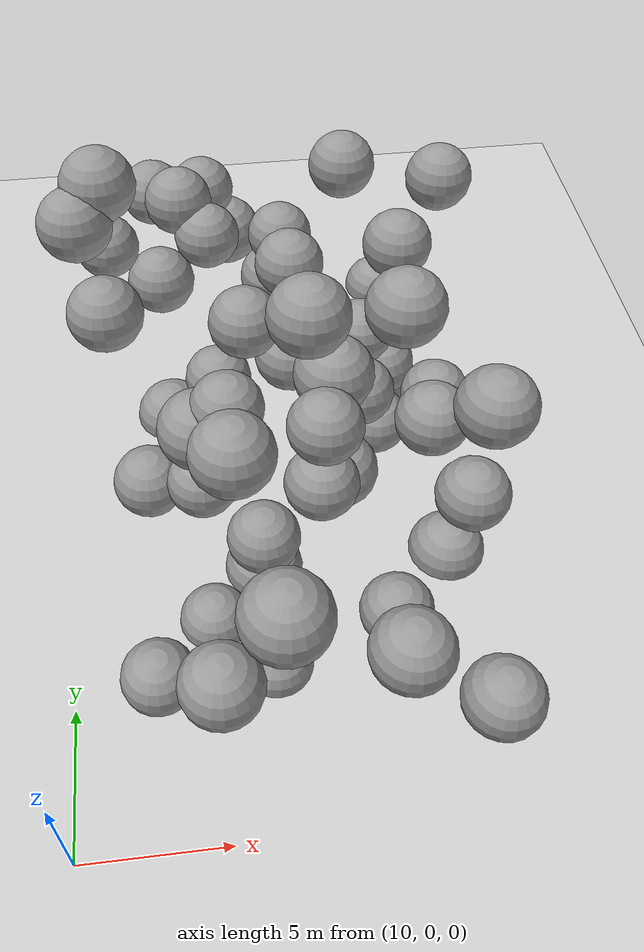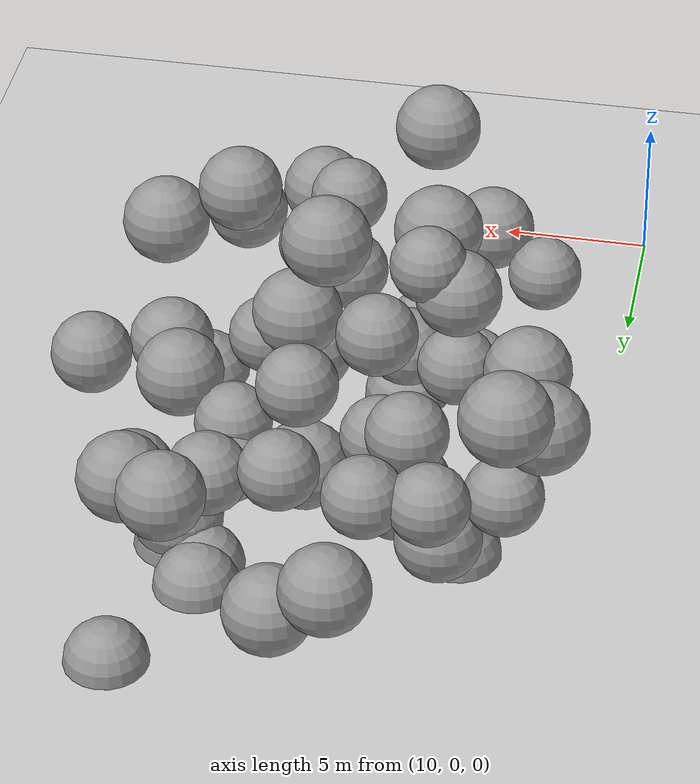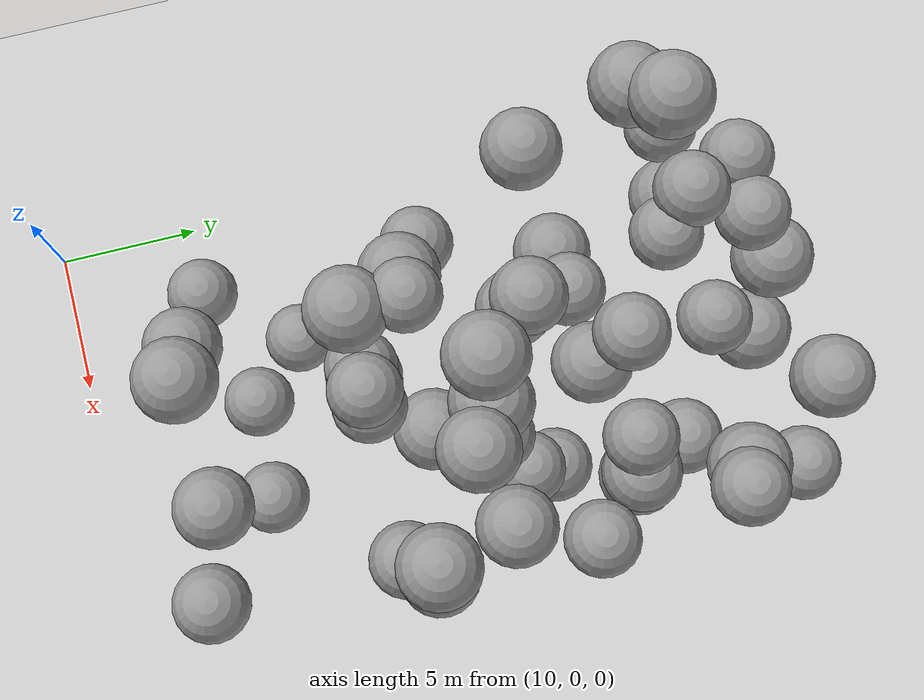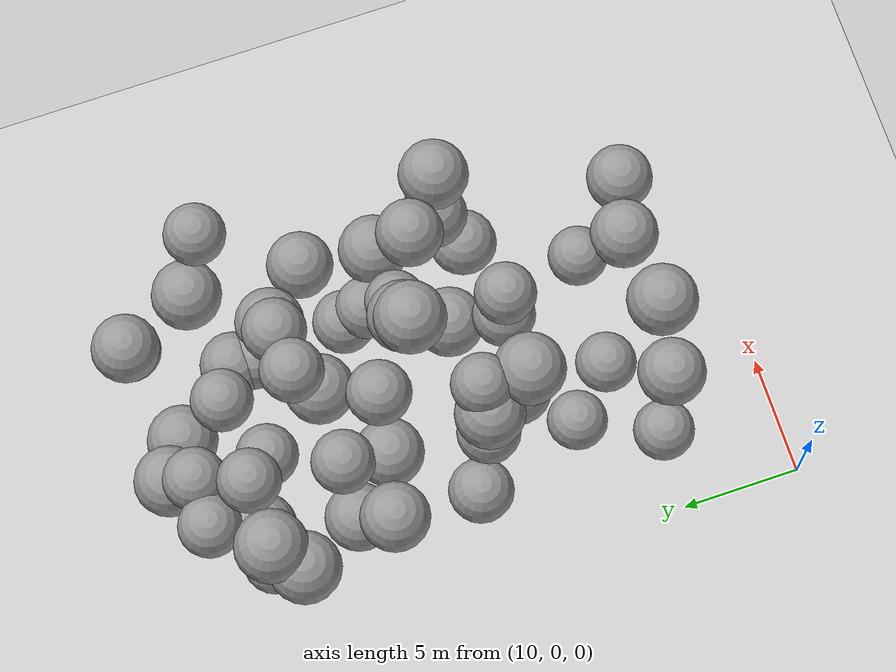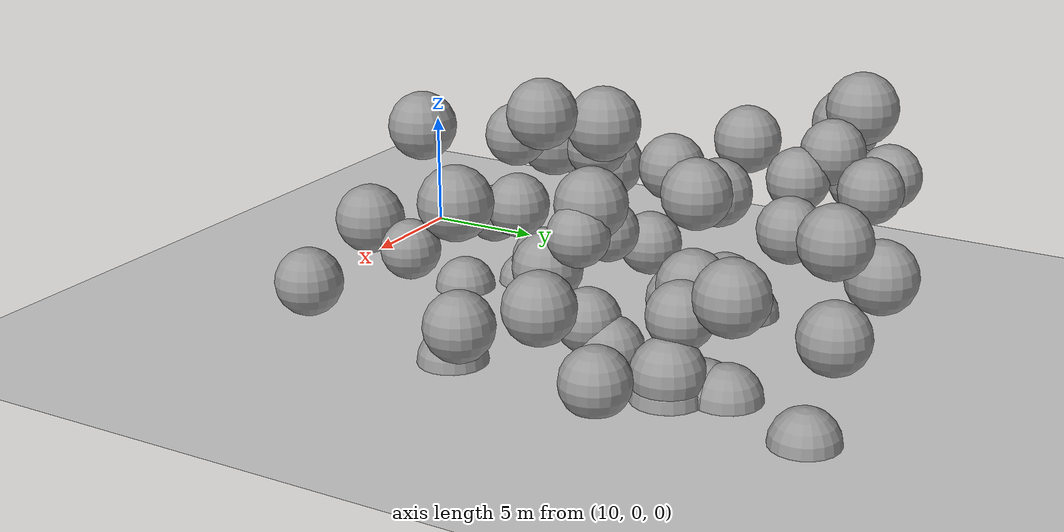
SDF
<sdf version="1.7">
 <world name="default">
  <model name="ground_plane">
   <static>1</static>
   <link name="link">
    <collision name="collision">
     <geometry><plane><normal>0 0 1</normal><size>100 100</size></plane></geometry>
     <surface>
      <contact><collide_bitmask>65535</collide_bitmask></contact>
      <friction><ode><mu>100</mu><mu2>50</mu2></ode></friction>
     </surface>
    </collision>
    <visual name="visual">
     <cast_shadows>0</cast_shadows>
     <geometry><plane><normal>0 0 1</normal><size>100 100</size></plane></geometry>
     <material>
      <script><uri>file://media/materials/scripts/gazebo.material</uri><name>Gazebo/Grey</name></script>
     </material>
    </visual>
   </link>
  </model>
  <model name="sphere_0">
   <static>1</static>
   <pose>15 12 6 0 0 0</pose>
   <link name="link">
    <inertial>
     <mass>1278.988058648705</mass>
     <inertia>
      <ixx>1076.7422005173073</ixx>
      <iyy>1076.7422005173073</iyy>
      <izz>1076.7422005173073</izz>
      <ixy>0</ixy>
      <ixz>0</ixz>
      <iyz>0</iyz>
     </inertia>
    </inertial>
    <collision name="collision">
     <geometry><sphere><radius>1.4507501588597562</radius></sphere></geometry>
    </collision>
    <visual name="visual">
     <geometry><sphere><radius>1.4507501588597562</radius></sphere></geometry>
     <material>
      <script><uri>file://media/materials/scripts/gazebo.material</uri><name>Gazebo/Grey</name></script>
     </material>
    </visual>
   </link>
  </model>
  <model name="sphere_14">
   <static>1</static>
   <pose>17 25 4 0 0 0</pose>
   <link name="link">
    <inertial>
     <mass>1322.0387221128017</mass>
     <inertia>
      <ixx>1137.822570965103</ixx>
      <iyy>1137.822570965103</iyy>
      <izz>1137.822570965103</izz>
      <ixy>0</ixy>
      <ixz>0</ixz>
      <iyz>0</iyz>
     </inertia>
    </inertial>
    <collision name="collision">
     <geometry><sphere><radius>1.4668482558747977</radius></sphere></geometry>
    </collision>
    <visual name="visual">
     <geometry><sphere><radius>1.4668482558747977</radius></sphere></geometry>
     <material>
      <script><uri>file://media/materials/scripts/gazebo.material</uri><name>Gazebo/Grey</name></script>
     </material>
    </visual>
   </link>
  </model>
  <model name="sphere_21">
   <static>1</static>
   <pose>19 22 6 0 0 0</pose>
   <link name="link">
    <inertial>
     <mass>886.9974340022904</mass>
     <inertia>
      <ixx>585.0659958478017</ixx>
      <iyy>585.0659958478017</iyy>
      <izz>585.0659958478017</izz>
      <ixy>0</ixy>
      <ixz>0</ixz>
      <iyz>0</iyz>
     </inertia>
    </inertial>
    <collision name="collision">
     <geometry><sphere><radius>1.2841366802223042</radius></sphere></geometry>
    </collision>
    <visual name="visual">
     <geometry><sphere><radius>1.2841366802223042</radius></sphere></geometry>
     <material>
      <script><uri>file://media/materials/scripts/gazebo.material</uri><name>Gazebo/Grey</name></script>
     </material>
    </visual>
   </link>
  </model>
  <model name="sphere_42">
   <static>1</static>
   <pose>19 10 8 0 0 0</pose>
   <link name="link">
    <inertial>
     <mass>841.4589982597224</mass>
     <inertia>
      <ixx>535.8655651688931</ixx>
      <iyy>535.8655651688931</iyy>
      <izz>535.8655651688931</izz>
      <ixy>0</ixy>
      <ixz>0</ixz>
      <iyz>0</iyz>
     </inertia>
    </inertial>
    <collision name="collision">
     <geometry><sphere><radius>1.2617736390456205</radius></sphere></geometry>
    </collision>
    <visual name="visual">
     <geometry><sphere><radius>1.2617736390456205</radius></sphere></geometry>
     <material>
      <script><uri>file://media/materials/scripts/gazebo.material</uri><name>Gazebo/Grey</name></script>
     </material>
    </visual>
   </link>
  </model>
  <model name="sphere_47">
   <static>1</static>
   <pose>24 14 3 0 0 0</pose>
   <link name="link">
    <inertial>
     <mass>1346.3461283506601</mass>
     <inertia>
      <ixx>1172.9030837464702</ixx>
      <iyy>1172.9030837464702</iyy>
      <izz>1172.9030837464702</izz>
      <ixy>0</ixy>
      <ixz>0</ixz>
      <iyz>0</iyz>
     </inertia>
    </inertial>
    <collision name="collision">
     <geometry><sphere><radius>1.475783687205652</radius></sphere></geometry>
    </collision>
    <visual name="visual">
     <geometry><sphere><radius>1.475783687205652</radius></sphere></geometry>
     <material>
      <script><uri>file://media/materials/scripts/gazebo.material</uri><name>Gazebo/Grey</name></script>
     </material>
    </visual>
   </link>
  </model>
  <model name="sphere_70">
   <static>1</static>
   <pose>22 15 2 0 0 0</pose>
   <link name="link">
    <inertial>
     <mass>957.7468671745436</mass>
     <inertia>
      <ixx>664.8935988876275</ixx>
      <iyy>664.8935988876275</iyy>
      <izz>664.8935988876275</izz>
      <ixy>0</ixy>
      <ixz>0</ixz>
      <iyz>0</iyz>
     </inertia>
    </inertial>
    <collision name="collision">
     <geometry><sphere><radius>1.3174092554641759</radius></sphere></geometry>
    </collision>
    <visual name="visual">
     <geometry><sphere><radius>1.3174092554641759</radius></sphere></geometry>
     <material>
      <script><uri>file://media/materials/scripts/gazebo.material</uri><name>Gazebo/Grey</name></script>
     </material>
    </visual>
   </link>
  </model>
  <model name="sphere_74">
   <static>1</static>
   <pose>22 16 1 0 0 0</pose>
   <link name="link">
    <inertial>
     <mass>1035.8773521349256</mass>
     <inertia>
      <ixx>757.7305809326065</ixx>
      <iyy>757.7305809326065</iyy>
      <izz>757.7305809326065</izz>
      <ixy>0</ixy>
      <ixz>0</ixz>
      <iyz>0</iyz>
     </inertia>
    </inertial>
    <collision name="collision">
     <geometry><sphere><radius>1.3523006067592522</radius></sphere></geometry>
    </collision>
    <visual name="visual">
     <geometry><sphere><radius>1.3523006067592522</radius></sphere></geometry>
     <material>
      <script><uri>file://media/materials/scripts/gazebo.material</uri><name>Gazebo/Grey</name></script>
     </material>
    </visual>
   </link>
  </model>
  <model name="sphere_76">
   <static>1</static>
   <pose>14 18 0 0 0 0</pose>
   <link name="link">
    <inertial>
     <mass>1339.566241561617</mass>
     <inertia>
      <ixx>1163.075504147498</ixx>
      <iyy>1163.075504147498</iyy>
      <izz>1163.075504147498</izz>
      <ixy>0</ixy>
      <ixz>0</ixz>
      <iyz>0</iyz>
     </inertia>
    </inertial>
    <collision name="collision">
     <geometry><sphere><radius>1.473302282503326</radius></sphere></geometry>
    </collision>
    <visual name="visual">
     <geometry><sphere><radius>1.473302282503326</radius></sphere></geometry>
     <material>
      <script><uri>file://media/materials/scripts/gazebo.material</uri><name>Gazebo/Grey</name></script>
     </material>
    </visual>
   </link>
  </model>
  <model name="sphere_81">
   <static>1</static>
   <pose>16 24 7 0 0 0</pose>
   <link name="link">
    <inertial>
     <mass>898.9616220781512</mass>
     <inertia>
      <ixx>598.2777306058921</ixx>
      <iyy>598.2777306058921</iyy>
      <izz>598.2777306058921</izz>
      <ixy>0</ixy>
      <ixz>0</ixz>
      <iyz>0</iyz>
     </inertia>
    </inertial>
    <collision name="collision">
     <geometry><sphere><radius>1.2898845693350613</radius></sphere></geometry>
    </collision>
    <visual name="visual">
     <geometry><sphere><radius>1.2898845693350613</radius></sphere></geometry>
     <material>
      <script><uri>file://media/materials/scripts/gazebo.material</uri><name>Gazebo/Grey</name></script>
     </material>
    </visual>
   </link>
  </model>
  <model name="sphere_84">
   <static>1</static>
   <pose>24 25 0 0 0 0</pose>
   <link name="link">
    <inertial>
     <mass>1113.5386543117133</mass>
     <inertia>
      <ixx>854.7578158525877</ixx>
      <iyy>854.7578158525877</iyy>
      <izz>854.7578158525877</izz>
      <ixy>0</ixy>
      <ixz>0</ixz>
      <iyz>0</iyz>
     </inertia>
    </inertial>
    <collision name="collision">
     <geometry><sphere><radius>1.3852842483075376</radius></sphere></geometry>
    </collision>
    <visual name="visual">
     <geometry><sphere><radius>1.3852842483075376</radius></sphere></geometry>
     <material>
      <script><uri>file://media/materials/scripts/gazebo.material</uri><name>Gazebo/Grey</name></script>
     </material>
    </visual>
   </link>
  </model>
  <model name="sphere_91">
   <static>1</static>
   <pose>22 21 0 0 0 0</pose>
   <link name="link">
    <inertial>
     <mass>1194.8294081815104</mass>
     <inertia>
      <ixx>961.2671267169985</ixx>
      <iyy>961.2671267169985</iyy>
      <izz>961.2671267169985</izz>
      <ixy>0</ixy>
      <ixz>0</ixz>
      <iyz>0</iyz>
     </inertia>
    </inertial>
    <collision name="collision">
     <geometry><sphere><radius>1.4182052802344938</radius></sphere></geometry>
    </collision>
    <visual name="visual">
     <geometry><sphere><radius>1.4182052802344938</radius></sphere></geometry>
     <material>
      <script><uri>file://media/materials/scripts/gazebo.material</uri><name>Gazebo/Grey</name></script>
     </material>
    </visual>
   </link>
  </model>
  <model name="sphere_106">
   <static>1</static>
   <pose>19 10 5 0 0 0</pose>
   <link name="link">
    <inertial>
     <mass>934.2651275107951</mass>
     <inertia>
      <ixx>637.9468286711718</ixx>
      <iyy>637.9468286711718</iyy>
      <izz>637.9468286711718</izz>
      <ixy>0</ixy>
      <ixz>0</ixz>
      <iyz>0</iyz>
     </inertia>
    </inertial>
    <collision name="collision">
     <geometry><sphere><radius>1.3065534361387776</radius></sphere></geometry>
    </collision>
    <visual name="visual">
     <geometry><sphere><radius>1.3065534361387776</radius></sphere></geometry>
     <material>
      <script><uri>file://media/materials/scripts/gazebo.material</uri><name>Gazebo/Grey</name></script>
     </material>
    </visual>
   </link>
  </model>
  <model name="sphere_108">
   <static>1</static>
   <pose>19 24 2 0 0 0</pose>
   <link name="link">
    <inertial>
     <mass>1372.9704820817115</mass>
     <inertia>
      <ixx>1211.8148000908611</ixx>
      <iyy>1211.8148000908611</iyy>
      <izz>1211.8148000908611</izz>
      <ixy>0</ixy>
      <ixz>0</ixz>
      <iyz>0</iyz>
     </inertia>
    </inertial>
    <collision name="collision">
     <geometry><sphere><radius>1.4854482632325592</radius></sphere></geometry>
    </collision>
    <visual name="visual">
     <geometry><sphere><radius>1.4854482632325592</radius></sphere></geometry>
     <material>
      <script><uri>file://media/materials/scripts/gazebo.material</uri><name>Gazebo/Grey</name></script>
     </material>
    </visual>
   </link>
  </model>
  <model name="sphere_113">
   <static>1</static>
   <pose>15 22 8 0 0 0</pose>
   <link name="link">
    <inertial>
     <mass>908.8805585958514</mass>
     <inertia>
      <ixx>609.3202450057744</ixx>
      <iyy>609.3202450057744</iyy>
      <izz>609.3202450057744</izz>
      <ixy>0</ixy>
      <ixz>0</ixz>
      <iyz>0</iyz>
     </inertia>
    </inertial>
    <collision name="collision">
     <geometry><sphere><radius>1.2946113239944343</radius></sphere></geometry>
    </collision>
    <visual name="visual">
     <geometry><sphere><radius>1.2946113239944343</radius></sphere></geometry>
     <material>
      <script><uri>file://media/materials/scripts/gazebo.material</uri><name>Gazebo/Grey</name></script>
     </material>
    </visual>
   </link>
  </model>
  <model name="sphere_122">
   <static>1</static>
   <pose>16 16 1 0 0 0</pose>
   <link name="link">
    <inertial>
     <mass>1327.2027267970655</mass>
     <inertia>
      <ixx>1145.2396105730131</ixx>
      <iyy>1145.2396105730131</iyy>
      <izz>1145.2396105730131</izz>
      <ixy>0</ixy>
      <ixz>0</ixz>
      <iyz>0</iyz>
     </inertia>
    </inertial>
    <collision name="collision">
     <geometry><sphere><radius>1.4687556558746524</radius></sphere></geometry>
    </collision>
    <visual name="visual">
     <geometry><sphere><radius>1.4687556558746524</radius></sphere></geometry>
     <material>
      <script><uri>file://media/materials/scripts/gazebo.material</uri><name>Gazebo/Grey</name></script>
     </material>
    </visual>
   </link>
  </model>
  <model name="sphere_129">
   <static>1</static>
   <pose>13 13 2 0 0 0</pose>
   <link name="link">
    <inertial>
     <mass>1074.1829190637104</mass>
     <inertia>
      <ixx>805.0039082538655</ixx>
      <iyy>805.0039082538655</iyy>
      <izz>805.0039082538655</izz>
      <ixy>0</ixy>
      <ixz>0</ixz>
      <iyz>0</iyz>
     </inertia>
    </inertial>
    <collision name="collision">
     <geometry><sphere><radius>1.3687681078752731</radius></sphere></geometry>
    </collision>
    <visual name="visual">
     <geometry><sphere><radius>1.3687681078752731</radius></sphere></geometry>
     <material>
      <script><uri>file://media/materials/scripts/gazebo.material</uri><name>Gazebo/Grey</name></script>
     </material>
    </visual>
   </link>
  </model>
  <model name="sphere_130">
   <static>1</static>
   <pose>24 3 2 0 0 0</pose>
   <link name="link">
    <inertial>
     <mass>1184.6877079510791</mass>
     <inertia>
      <ixx>947.7069285292126</ixx>
      <iyy>947.7069285292126</iyy>
      <izz>947.7069285292126</izz>
      <ixy>0</ixy>
      <ixz>0</ixz>
      <iyz>0</iyz>
     </inertia>
    </inertial>
    <collision name="collision">
     <geometry><sphere><radius>1.4141813026977472</radius></sphere></geometry>
    </collision>
    <visual name="visual">
     <geometry><sphere><radius>1.4141813026977472</radius></sphere></geometry>
     <material>
      <script><uri>file://media/materials/scripts/gazebo.material</uri><name>Gazebo/Grey</name></script>
     </material>
    </visual>
   </link>
  </model>
  <model name="sphere_141">
   <static>1</static>
   <pose>20 12 3 0 0 0</pose>
   <link name="link">
    <inertial>
     <mass>1307.2118784667887</mass>
     <inertia>
      <ixx>1116.6341209381533</ixx>
      <iyy>1116.6341209381533</iyy>
      <izz>1116.6341209381533</izz>
      <ixy>0</ixy>
      <ixz>0</ixz>
      <iyz>0</iyz>
     </inertia>
    </inertial>
    <collision name="collision">
     <geometry><sphere><radius>1.4613439932127699</radius></sphere></geometry>
    </collision>
    <visual name="visual">
     <geometry><sphere><radius>1.4613439932127699</radius></sphere></geometry>
     <material>
      <script><uri>file://media/materials/scripts/gazebo.material</uri><name>Gazebo/Grey</name></script>
     </material>
    </visual>
   </link>
  </model>
  <model name="sphere_144">
   <static>1</static>
   <pose>11 21 8 0 0 0</pose>
   <link name="link">
    <inertial>
     <mass>1303.7431327118716</mass>
     <inertia>
      <ixx>1111.7000918673205</ixx>
      <iyy>1111.7000918673205</iyy>
      <izz>1111.7000918673205</izz>
      <ixy>0</ixy>
      <ixz>0</ixz>
      <iyz>0</iyz>
     </inertia>
    </inertial>
    <collision name="collision">
     <geometry><sphere><radius>1.4600502674564526</radius></sphere></geometry>
    </collision>
    <visual name="visual">
     <geometry><sphere><radius>1.4600502674564526</radius></sphere></geometry>
     <material>
      <script><uri>file://media/materials/scripts/gazebo.material</uri><name>Gazebo/Grey</name></script>
     </material>
    </visual>
   </link>
  </model>
  <model name="sphere_171">
   <static>1</static>
   <pose>14 22 4 0 0 0</pose>
   <link name="link">
    <inertial>
     <mass>1128.5224383656987</mass>
     <inertia>
      <ixx>874.0130477244181</ixx>
      <iyy>874.0130477244181</iyy>
      <izz>874.0130477244181</izz>
      <ixy>0</ixy>
      <ixz>0</ixz>
      <iyz>0</iyz>
     </inertia>
    </inertial>
    <collision name="collision">
     <geometry><sphere><radius>1.3914700502207857</radius></sphere></geometry>
    </collision>
    <visual name="visual">
     <geometry><sphere><radius>1.3914700502207857</radius></sphere></geometry>
     <material>
      <script><uri>file://media/materials/scripts/gazebo.material</uri><name>Gazebo/Grey</name></script>
     </material>
    </visual>
   </link>
  </model>
  <model name="sphere_177">
   <static>1</static>
   <pose>23 19 0 0 0 0</pose>
   <link name="link">
    <inertial>
     <mass>1144.0798240506122</mass>
     <inertia>
      <ixx>894.1865433650082</ixx>
      <iyy>894.1865433650082</iyy>
      <izz>894.1865433650082</izz>
      <ixy>0</ixy>
      <ixz>0</ixz>
      <iyz>0</iyz>
     </inertia>
    </inertial>
    <collision name="collision">
     <geometry><sphere><radius>1.397834985182652</radius></sphere></geometry>
    </collision>
    <visual name="visual">
     <geometry><sphere><radius>1.397834985182652</radius></sphere></geometry>
     <material>
      <script><uri>file://media/materials/scripts/gazebo.material</uri><name>Gazebo/Grey</name></script>
     </material>
    </visual>
   </link>
  </model>
  <model name="sphere_191">
   <static>1</static>
   <pose>24 22 5 0 0 0</pose>
   <link name="link">
    <inertial>
     <mass>1287.2375510164782</mass>
     <inertia>
      <ixx>1088.3420749026832</ixx>
      <iyy>1088.3420749026832</iyy>
      <izz>1088.3420749026832</izz>
      <ixy>0</ixy>
      <ixz>0</ixz>
      <iyz>0</iyz>
     </inertia>
    </inertial>
    <collision name="collision">
     <geometry><sphere><radius>1.4538625968357972</radius></sphere></geometry>
    </collision>
    <visual name="visual">
     <geometry><sphere><radius>1.4538625968357972</radius></sphere></geometry>
     <material>
      <script><uri>file://media/materials/scripts/gazebo.material</uri><name>Gazebo/Grey</name></script>
     </material>
    </visual>
   </link>
  </model>
  <model name="sphere_197">
   <static>1</static>
   <pose>17 10 0 0 0 0</pose>
   <link name="link">
    <inertial>
     <mass>1291.4101691968383</mass>
     <inertia>
      <ixx>1094.228246947246</ixx>
      <iyy>1094.228246947246</iyy>
      <izz>1094.228246947246</izz>
      <ixy>0</ixy>
      <ixz>0</ixz>
      <iyz>0</iyz>
     </inertia>
    </inertial>
    <collision name="collision">
     <geometry><sphere><radius>1.4554318152131311</radius></sphere></geometry>
    </collision>
    <visual name="visual">
     <geometry><sphere><radius>1.4554318152131311</radius></sphere></geometry>
     <material>
      <script><uri>file://media/materials/scripts/gazebo.material</uri><name>Gazebo/Grey</name></script>
     </material>
    </visual>
   </link>
  </model>
  <model name="sphere_205">
   <static>1</static>
   <pose>23 19 1 0 0 0</pose>
   <link name="link">
    <inertial>
     <mass>1366.4352429293838</mass>
     <inertia>
      <ixx>1202.216478348629</ixx>
      <iyy>1202.216478348629</iyy>
      <izz>1202.216478348629</izz>
      <ixy>0</ixy>
      <ixz>0</ixz>
      <iyz>0</iyz>
     </inertia>
    </inertial>
    <collision name="collision">
     <geometry><sphere><radius>1.4830876387378469</radius></sphere></geometry>
    </collision>
    <visual name="visual">
     <geometry><sphere><radius>1.4830876387378469</radius></sphere></geometry>
     <material>
      <script><uri>file://media/materials/scripts/gazebo.material</uri><name>Gazebo/Grey</name></script>
     </material>
    </visual>
   </link>
  </model>
  <model name="sphere_208">
   <static>1</static>
   <pose>25 11 2 0 0 0</pose>
   <link name="link">
    <inertial>
     <mass>1249.9381624293858</mass>
     <inertia>
      <ixx>1036.2911715593268</ixx>
      <iyy>1036.2911715593268</iyy>
      <izz>1036.2911715593268</izz>
      <ixy>0</ixy>
      <ixz>0</ixz>
      <iyz>0</iyz>
     </inertia>
    </inertial>
    <collision name="collision">
     <geometry><sphere><radius>1.4396822145726134</radius></sphere></geometry>
    </collision>
    <visual name="visual">
     <geometry><sphere><radius>1.4396822145726134</radius></sphere></geometry>
     <material>
      <script><uri>file://media/materials/scripts/gazebo.material</uri><name>Gazebo/Grey</name></script>
     </material>
    </visual>
   </link>
  </model>
  <model name="sphere_217">
   <static>1</static>
   <pose>22 20 0 0 0 0</pose>
   <link name="link">
    <inertial>
     <mass>1131.682740635828</mass>
     <inertia>
      <ixx>878.0961491974141</ixx>
      <iyy>878.0961491974141</iyy>
      <izz>878.0961491974141</izz>
      <ixy>0</ixy>
      <ixz>0</ixz>
      <iyz>0</iyz>
     </inertia>
    </inertial>
    <collision name="collision">
     <geometry><sphere><radius>1.3927677256328026</radius></sphere></geometry>
    </collision>
    <visual name="visual">
     <geometry><sphere><radius>1.3927677256328026</radius></sphere></geometry>
     <material>
      <script><uri>file://media/materials/scripts/gazebo.material</uri><name>Gazebo/Grey</name></script>
     </material>
    </visual>
   </link>
  </model>
  <model name="sphere_228">
   <static>1</static>
   <pose>24 10 0 0 0 0</pose>
   <link name="link">
    <inertial>
     <mass>1255.4990297708707</mass>
     <inertia>
      <ixx>1043.9865114479805</ixx>
      <iyy>1043.9865114479805</iyy>
      <izz>1043.9865114479805</izz>
      <ixy>0</ixy>
      <ixz>0</ixz>
      <iyz>0</iyz>
     </inertia>
    </inertial>
    <collision name="collision">
     <geometry><sphere><radius>1.4418140636549195</radius></sphere></geometry>
    </collision>
    <visual name="visual">
     <geometry><sphere><radius>1.4418140636549195</radius></sphere></geometry>
     <material>
      <script><uri>file://media/materials/scripts/gazebo.material</uri><name>Gazebo/Grey</name></script>
     </material>
    </visual>
   </link>
  </model>
  <model name="sphere_240">
   <static>1</static>
   <pose>20 14 6 0 0 0</pose>
   <link name="link">
    <inertial>
     <mass>1374.8534075986734</mass>
     <inertia>
      <ixx>1214.5859205261413</ixx>
      <iyy>1214.5859205261413</iyy>
      <izz>1214.5859205261413</izz>
      <ixy>0</ixy>
      <ixz>0</ixz>
      <iyz>0</iyz>
     </inertia>
    </inertial>
    <collision name="collision">
     <geometry><sphere><radius>1.4861270131472266</radius></sphere></geometry>
    </collision>
    <visual name="visual">
     <geometry><sphere><radius>1.4861270131472266</radius></sphere></geometry>
     <material>
      <script><uri>file://media/materials/scripts/gazebo.material</uri><name>Gazebo/Grey</name></script>
     </material>
    </visual>
   </link>
  </model>
  <model name="sphere_246">
   <static>1</static>
   <pose>16 21 7 0 0 0</pose>
   <link name="link">
    <inertial>
     <mass>844.8430520458714</mass>
     <inertia>
      <ixx>539.4621511073458</ixx>
      <iyy>539.4621511073458</iyy>
      <izz>539.4621511073458</izz>
      <ixy>0</ixy>
      <ixz>0</ixz>
      <iyz>0</iyz>
     </inertia>
    </inertial>
    <collision name="collision">
     <geometry><sphere><radius>1.263462847351672</radius></sphere></geometry>
    </collision>
    <visual name="visual">
     <geometry><sphere><radius>1.263462847351672</radius></sphere></geometry>
     <material>
      <script><uri>file://media/materials/scripts/gazebo.material</uri><name>Gazebo/Grey</name></script>
     </material>
    </visual>
   </link>
  </model>
  <model name="sphere_250">
   <static>1</static>
   <pose>25 21 9 0 0 0</pose>
   <link name="link">
    <inertial>
     <mass>842.0500120955862</mass>
     <inertia>
      <ixx>536.4930033558585</ixx>
      <iyy>536.4930033558585</iyy>
      <izz>536.4930033558585</izz>
      <ixy>0</ixy>
      <ixz>0</ixz>
      <iyz>0</iyz>
     </inertia>
    </inertial>
    <collision name="collision">
     <geometry><sphere><radius>1.2620689797006681</radius></sphere></geometry>
    </collision>
    <visual name="visual">
     <geometry><sphere><radius>1.2620689797006681</radius></sphere></geometry>
     <material>
      <script><uri>file://media/materials/scripts/gazebo.material</uri><name>Gazebo/Grey</name></script>
     </material>
    </visual>
   </link>
  </model>
  <model name="sphere_256">
   <static>1</static>
   <pose>17 4 7 0 0 0</pose>
   <link name="link">
    <inertial>
     <mass>1321.4439580064575</mass>
     <inertia>
      <ixx>1136.9695519070326</ixx>
      <iyy>1136.9695519070326</iyy>
      <izz>1136.9695519070326</izz>
      <ixy>0</ixy>
      <ixz>0</ixz>
      <iyz>0</iyz>
     </inertia>
    </inertial>
    <collision name="collision">
     <geometry><sphere><radius>1.4666282523452137</radius></sphere></geometry>
    </collision>
    <visual name="visual">
     <geometry><sphere><radius>1.4666282523452137</radius></sphere></geometry>
     <material>
      <script><uri>file://media/materials/scripts/gazebo.material</uri><name>Gazebo/Grey</name></script>
     </material>
    </visual>
   </link>
  </model>
  <model name="sphere_265">
   <static>1</static>
   <pose>25 11 7 0 0 0</pose>
   <link name="link">
    <inertial>
     <mass>1280.271160276301</mass>
     <inertia>
      <ixx>1078.543144648552</ixx>
      <iyy>1078.543144648552</iyy>
      <izz>1078.543144648552</izz>
      <ixy>0</ixy>
      <ixz>0</ixz>
      <iyz>0</iyz>
     </inertia>
    </inertial>
    <collision name="collision">
     <geometry><sphere><radius>1.4512351354373736</radius></sphere></geometry>
    </collision>
    <visual name="visual">
     <geometry><sphere><radius>1.4512351354373736</radius></sphere></geometry>
     <material>
      <script><uri>file://media/materials/scripts/gazebo.material</uri><name>Gazebo/Grey</name></script>
     </material>
    </visual>
   </link>
  </model>
  <model name="sphere_268">
   <static>1</static>
   <pose>23 19 0 0 0 0</pose>
   <link name="link">
    <inertial>
     <mass>1396.3719336314068</mass>
     <inertia>
      <ixx>1246.4344302590462</ixx>
      <iyy>1246.4344302590462</iyy>
      <izz>1246.4344302590462</izz>
      <ixy>0</ixy>
      <ixz>0</ixz>
      <iyz>0</iyz>
     </inertia>
    </inertial>
    <collision name="collision">
     <geometry><sphere><radius>1.493840285753716</radius></sphere></geometry>
    </collision>
    <visual name="visual">
     <geometry><sphere><radius>1.493840285753716</radius></sphere></geometry>
     <material>
      <script><uri>file://media/materials/scripts/gazebo.material</uri><name>Gazebo/Grey</name></script>
     </material>
    </visual>
   </link>
  </model>
  <model name="sphere_278">
   <static>1</static>
   <pose>19 19 7 0 0 0</pose>
   <link name="link">
    <inertial>
     <mass>964.1114329894016</mass>
     <inertia>
      <ixx>672.2739867424139</ixx>
      <iyy>672.2739867424139</iyy>
      <izz>672.2739867424139</izz>
      <ixy>0</ixy>
      <ixz>0</ixz>
      <iyz>0</iyz>
     </inertia>
    </inertial>
    <collision name="collision">
     <geometry><sphere><radius>1.3203210314546394</radius></sphere></geometry>
    </collision>
    <visual name="visual">
     <geometry><sphere><radius>1.3203210314546394</radius></sphere></geometry>
     <material>
      <script><uri>file://media/materials/scripts/gazebo.material</uri><name>Gazebo/Grey</name></script>
     </material>
    </visual>
   </link>
  </model>
  <model name="sphere_289">
   <static>1</static>
   <pose>21 4 4 0 0 0</pose>
   <link name="link">
    <inertial>
     <mass>1239.2389220162095</mass>
     <inertia>
      <ixx>1021.5492923118194</ixx>
      <iyy>1021.5492923118194</iyy>
      <izz>1021.5492923118194</izz>
      <ixy>0</ixy>
      <ixz>0</ixz>
      <iyz>0</iyz>
     </inertia>
    </inertial>
    <collision name="collision">
     <geometry><sphere><radius>1.435562632982495</radius></sphere></geometry>
    </collision>
    <visual name="visual">
     <geometry><sphere><radius>1.435562632982495</radius></sphere></geometry>
     <material>
      <script><uri>file://media/materials/scripts/gazebo.material</uri><name>Gazebo/Grey</name></script>
     </material>
    </visual>
   </link>
  </model>
  <model name="sphere_297">
   <static>1</static>
   <pose>15 12 3 0 0 0</pose>
   <link name="link">
    <inertial>
     <mass>998.6391002792749</mass>
     <inertia>
      <ixx>712.8779725406744</ixx>
      <iyy>712.8779725406744</iyy>
      <izz>712.8779725406744</izz>
      <ixy>0</ixy>
      <ixz>0</ixz>
      <iyz>0</iyz>
     </inertia>
    </inertial>
    <collision name="collision">
     <geometry><sphere><radius>1.3358980594134962</radius></sphere></geometry>
    </collision>
    <visual name="visual">
     <geometry><sphere><radius>1.3358980594134962</radius></sphere></geometry>
     <material>
      <script><uri>file://media/materials/scripts/gazebo.material</uri><name>Gazebo/Grey</name></script>
     </material>
    </visual>
   </link>
  </model>
  <model name="sphere_300">
   <static>1</static>
   <pose>21 14 5 0 0 0</pose>
   <link name="link">
    <inertial>
     <mass>865.6850158785138</mass>
     <inertia>
      <ixx>561.8246015292416</ixx>
      <iyy>561.8246015292416</iyy>
      <izz>561.8246015292416</izz>
      <ixy>0</ixy>
      <ixz>0</ixz>
      <iyz>0</iyz>
     </inertia>
    </inertial>
    <collision name="collision">
     <geometry><sphere><radius>1.2737682820278144</radius></sphere></geometry>
    </collision>
    <visual name="visual">
     <geometry><sphere><radius>1.2737682820278144</radius></sphere></geometry>
     <material>
      <script><uri>file://media/materials/scripts/gazebo.material</uri><name>Gazebo/Grey</name></script>
     </material>
    </visual>
   </link>
  </model>
  <model name="sphere_309">
   <static>1</static>
   <pose>12 22 6 0 0 0</pose>
   <link name="link">
    <inertial>
     <mass>857.878241471361</mass>
     <inertia>
      <ixx>553.405757657869</ixx>
      <iyy>553.405757657869</iyy>
      <izz>553.405757657869</izz>
      <ixy>0</ixy>
      <ixz>0</ixz>
      <iyz>0</iyz>
     </inertia>
    </inertial>
    <collision name="collision">
     <geometry><sphere><radius>1.269927753452598</radius></sphere></geometry>
    </collision>
    <visual name="visual">
     <geometry><sphere><radius>1.269927753452598</radius></sphere></geometry>
     <material>
      <script><uri>file://media/materials/scripts/gazebo.material</uri><name>Gazebo/Grey</name></script>
     </material>
    </visual>
   </link>
  </model>
  <model name="sphere_317">
   <static>1</static>
   <pose>17 16 7 0 0 0</pose>
   <link name="link">
    <inertial>
     <mass>995.9522652205784</mass>
     <inertia>
      <ixx>709.6841807172328</ixx>
      <iyy>709.6841807172328</iyy>
      <izz>709.6841807172328</izz>
      <ixy>0</ixy>
      <ixz>0</ixz>
      <iyz>0</iyz>
     </inertia>
    </inertial>
    <collision name="collision">
     <geometry><sphere><radius>1.3346989069556887</radius></sphere></geometry>
    </collision>
    <visual name="visual">
     <geometry><sphere><radius>1.3346989069556887</radius></sphere></geometry>
     <material>
      <script><uri>file://media/materials/scripts/gazebo.material</uri><name>Gazebo/Grey</name></script>
     </material>
    </visual>
   </link>
  </model>
  <model name="sphere_328">
   <static>1</static>
   <pose>19 14 9 0 0 0</pose>
   <link name="link">
    <inertial>
     <mass>1340.8043614123621</mass>
     <inertia>
      <ixx>1164.8677142386773</ixx>
      <iyy>1164.8677142386773</iyy>
      <izz>1164.8677142386773</izz>
      <ixy>0</ixy>
      <ixz>0</ixz>
      <iyz>0</iyz>
     </inertia>
    </inertial>
    <collision name="collision">
     <geometry><sphere><radius>1.473756052049466</radius></sphere></geometry>
    </collision>
    <visual name="visual">
     <geometry><sphere><radius>1.473756052049466</radius></sphere></geometry>
     <material>
      <script><uri>file://media/materials/scripts/gazebo.material</uri><name>Gazebo/Grey</name></script>
     </material>
    </visual>
   </link>
  </model>
  <model name="sphere_334">
   <static>1</static>
   <pose>22 19 3 0 0 0</pose>
   <link name="link">
    <inertial>
     <mass>1085.0142496247379</mass>
     <inertia>
      <ixx>818.5778488579502</ixx>
      <iyy>818.5778488579502</iyy>
      <izz>818.5778488579502</izz>
      <ixy>0</ixy>
      <ixz>0</ixz>
      <iyz>0</iyz>
     </inertia>
    </inertial>
    <collision name="collision">
     <geometry><sphere><radius>1.373353306695541</radius></sphere></geometry>
    </collision>
    <visual name="visual">
     <geometry><sphere><radius>1.373353306695541</radius></sphere></geometry>
     <material>
      <script><uri>file://media/materials/scripts/gazebo.material</uri><name>Gazebo/Grey</name></script>
     </material>
    </visual>
   </link>
  </model>
  <model name="sphere_339">
   <static>1</static>
   <pose>15 4 3 0 0 0</pose>
   <link name="link">
    <inertial>
     <mass>1246.811818019565</mass>
     <inertia>
      <ixx>1031.9748230575892</ixx>
      <iyy>1031.9748230575892</iyy>
      <izz>1031.9748230575892</izz>
      <ixy>0</ixy>
      <ixz>0</ixz>
      <iyz>0</iyz>
     </inertia>
    </inertial>
    <collision name="collision">
     <geometry><sphere><radius>1.438480901743274</radius></sphere></geometry>
    </collision>
    <visual name="visual">
     <geometry><sphere><radius>1.438480901743274</radius></sphere></geometry>
     <material>
      <script><uri>file://media/materials/scripts/gazebo.material</uri><name>Gazebo/Grey</name></script>
     </material>
    </visual>
   </link>
  </model>
  <model name="sphere_347">
   <static>1</static>
   <pose>22 13 10 0 0 0</pose>
   <link name="link">
    <inertial>
     <mass>1042.705061753582</mass>
     <inertia>
      <ixx>766.0728214217976</ixx>
      <iyy>766.0728214217976</iyy>
      <izz>766.0728214217976</izz>
      <ixy>0</ixy>
      <ixz>0</ixz>
      <iyz>0</iyz>
     </inertia>
    </inertial>
    <collision name="collision">
     <geometry><sphere><radius>1.355265212535047</radius></sphere></geometry>
    </collision>
    <visual name="visual">
     <geometry><sphere><radius>1.355265212535047</radius></sphere></geometry>
     <material>
      <script><uri>file://media/materials/scripts/gazebo.material</uri><name>Gazebo/Grey</name></script>
     </material>
    </visual>
   </link>
  </model>
  <model name="sphere_351">
   <static>1</static>
   <pose>17 10 2 0 0 0</pose>
   <link name="link">
    <inertial>
     <mass>1030.9173329028724</mass>
     <inertia>
      <ixx>751.6932567556664</ixx>
      <iyy>751.6932567556664</iyy>
      <izz>751.6932567556664</izz>
      <ixy>0</ixy>
      <ixz>0</ixz>
      <iyz>0</iyz>
     </inertia>
    </inertial>
    <collision name="collision">
     <geometry><sphere><radius>1.3501387770932098</radius></sphere></geometry>
    </collision>
    <visual name="visual">
     <geometry><sphere><radius>1.3501387770932098</radius></sphere></geometry>
     <material>
      <script><uri>file://media/materials/scripts/gazebo.material</uri><name>Gazebo/Grey</name></script>
     </material>
    </visual>
   </link>
  </model>
  <model name="sphere_355">
   <static>1</static>
   <pose>13 5 2 0 0 0</pose>
   <link name="link">
    <inertial>
     <mass>876.0429419509165</mass>
     <inertia>
      <ixx>573.0729507501146</ixx>
      <iyy>573.0729507501146</iyy>
      <izz>573.0729507501146</izz>
      <ixy>0</ixy>
      <ixz>0</ixz>
      <iyz>0</iyz>
     </inertia>
    </inertial>
    <collision name="collision">
     <geometry><sphere><radius>1.2788283689269522</radius></sphere></geometry>
    </collision>
    <visual name="visual">
     <geometry><sphere><radius>1.2788283689269522</radius></sphere></geometry>
     <material>
      <script><uri>file://media/materials/scripts/gazebo.material</uri><name>Gazebo/Grey</name></script>
     </material>
    </visual>
   </link>
  </model>
  <model name="sphere_357">
   <static>1</static>
   <pose>12 17 7 0 0 0</pose>
   <link name="link">
    <inertial>
     <mass>1186.795220081962</mass>
     <inertia>
      <ixx>950.5184824034479</ixx>
      <iyy>950.5184824034479</iyy>
      <izz>950.5184824034479</izz>
      <ixy>0</ixy>
      <ixz>0</ixz>
      <iyz>0</iyz>
     </inertia>
    </inertial>
    <collision name="collision">
     <geometry><sphere><radius>1.4150193966064544</radius></sphere></geometry>
    </collision>
    <visual name="visual">
     <geometry><sphere><radius>1.4150193966064544</radius></sphere></geometry>
     <material>
      <script><uri>file://media/materials/scripts/gazebo.material</uri><name>Gazebo/Grey</name></script>
     </material>
    </visual>
   </link>
  </model>
  <model name="sphere_358">
   <static>1</static>
   <pose>16 12 7 0 0 0</pose>
   <link name="link">
    <inertial>
     <mass>894.2325949045168</mass>
     <inertia>
      <ixx>593.0414900705276</ixx>
      <iyy>593.0414900705276</iyy>
      <izz>593.0414900705276</izz>
      <ixy>0</ixy>
      <ixz>0</ixz>
      <iyz>0</iyz>
     </inertia>
    </inertial>
    <collision name="collision">
     <geometry><sphere><radius>1.287618760034643</radius></sphere></geometry>
    </collision>
    <visual name="visual">
     <geometry><sphere><radius>1.287618760034643</radius></sphere></geometry>
     <material>
      <script><uri>file://media/materials/scripts/gazebo.material</uri><name>Gazebo/Grey</name></script>
     </material>
    </visual>
   </link>
  </model>
  <model name="sphere_359">
   <static>1</static>
   <pose>12 22 9 0 0 0</pose>
   <link name="link">
    <inertial>
     <mass>1345.2645931237296</mass>
     <inertia>
      <ixx>1171.3331601964414</ixx>
      <iyy>1171.3331601964414</iyy>
      <izz>1171.3331601964414</izz>
      <ixy>0</ixy>
      <ixz>0</ixz>
      <iyz>0</iyz>
     </inertia>
    </inertial>
    <collision name="collision">
     <geometry><sphere><radius>1.4753884100442682</radius></sphere></geometry>
    </collision>
    <visual name="visual">
     <geometry><sphere><radius>1.4753884100442682</radius></sphere></geometry>
     <material>
      <script><uri>file://media/materials/scripts/gazebo.material</uri><name>Gazebo/Grey</name></script>
     </material>
    </visual>
   </link>
  </model>
  <model name="sphere_361">
   <static>1</static>
   <pose>17 6 0 0 0 0</pose>
   <link name="link">
    <inertial>
     <mass>930.740883385732</mass>
     <inertia>
      <ixx>633.9410917637607</ixx>
      <iyy>633.9410917637607</iyy>
      <izz>633.9410917637607</izz>
      <ixy>0</ixy>
      <ixz>0</ixz>
      <iyz>0</iyz>
     </inertia>
    </inertial>
    <collision name="collision">
     <geometry><sphere><radius>1.3049085014709727</radius></sphere></geometry>
    </collision>
    <visual name="visual">
     <geometry><sphere><radius>1.3049085014709727</radius></sphere></geometry>
     <material>
      <script><uri>file://media/materials/scripts/gazebo.material</uri><name>Gazebo/Grey</name></script>
     </material>
    </visual>
   </link>
  </model>
  <model name="sphere_366">
   <static>1</static>
   <pose>16 18 2 0 0 0</pose>
   <link name="link">
    <inertial>
     <mass>1047.653082777967</mass>
     <inertia>
      <ixx>772.1412314551079</ixx>
      <iyy>772.1412314551079</iyy>
      <izz>772.1412314551079</izz>
      <ixy>0</ixy>
      <ixz>0</ixz>
      <iyz>0</iyz>
     </inertia>
    </inertial>
    <collision name="collision">
     <geometry><sphere><radius>1.3574055753254934</radius></sphere></geometry>
    </collision>
    <visual name="visual">
     <geometry><sphere><radius>1.3574055753254934</radius></sphere></geometry>
     <material>
      <script><uri>file://media/materials/scripts/gazebo.material</uri><name>Gazebo/Grey</name></script>
     </material>
    </visual>
   </link>
  </model>
  <model name="sphere_368">
   <static>1</static>
   <pose>14 24 7 0 0 0</pose>
   <link name="link">
    <inertial>
     <mass>895.518406311575</mass>
     <inertia>
      <ixx>594.4633888441424</ixx>
      <iyy>594.4633888441424</iyy>
      <izz>594.4633888441424</izz>
      <ixy>0</ixy>
      <ixz>0</ixz>
      <iyz>0</iyz>
     </inertia>
    </inertial>
    <collision name="collision">
     <geometry><sphere><radius>1.2882356174346832</radius></sphere></geometry>
    </collision>
    <visual name="visual">
     <geometry><sphere><radius>1.2882356174346832</radius></sphere></geometry>
     <material>
      <script><uri>file://media/materials/scripts/gazebo.material</uri><name>Gazebo/Grey</name></script>
     </material>
    </visual>
   </link>
  </model>
  <model name="sphere_371">
   <static>1</static>
   <pose>22 25 7 0 0 0</pose>
   <link name="link">
    <inertial>
     <mass>1125.030677847885</mass>
     <inertia>
      <ixx>869.5105591968136</ixx>
      <iyy>869.5105591968136</iyy>
      <izz>869.5105591968136</izz>
      <ixy>0</ixy>
      <ixz>0</ixz>
      <iyz>0</iyz>
     </inertia>
    </inertial>
    <collision name="collision">
     <geometry><sphere><radius>1.3900334520256583</radius></sphere></geometry>
    </collision>
    <visual name="visual">
     <geometry><sphere><radius>1.3900334520256583</radius></sphere></geometry>
     <material>
      <script><uri>file://media/materials/scripts/gazebo.material</uri><name>Gazebo/Grey</name></script>
     </material>
    </visual>
   </link>
  </model>
  <model name="sphere_374">
   <static>1</static>
   <pose>19 18 3 0 0 0</pose>
   <link name="link">
    <inertial>
     <mass>1344.424552809904</mass>
     <inertia>
      <ixx>1170.1143637157693</ixx>
      <iyy>1170.1143637157693</iyy>
      <izz>1170.1143637157693</izz>
      <ixy>0</ixy>
      <ixz>0</ixz>
      <iyz>0</iyz>
     </inertia>
    </inertial>
    <collision name="collision">
     <geometry><sphere><radius>1.4750812477175215</radius></sphere></geometry>
    </collision>
    <visual name="visual">
     <geometry><sphere><radius>1.4750812477175215</radius></sphere></geometry>
     <material>
      <script><uri>file://media/materials/scripts/gazebo.material</uri><name>Gazebo/Grey</name></script>
     </material>
    </visual>
   </link>
  </model>
  <model name="sphere_381">
   <static>1</static>
   <pose>16 10 7 0 0 0</pose>
   <link name="link">
    <inertial>
     <mass>1374.1863274846721</mass>
     <inertia>
      <ixx>1213.6038824145728</ixx>
      <iyy>1213.6038824145728</iyy>
      <izz>1213.6038824145728</izz>
      <ixy>0</ixy>
      <ixz>0</ixz>
      <iyz>0</iyz>
     </inertia>
    </inertial>
    <collision name="collision">
     <geometry><sphere><radius>1.4858866175403704</radius></sphere></geometry>
    </collision>
    <visual name="visual">
     <geometry><sphere><radius>1.4858866175403704</radius></sphere></geometry>
     <material>
      <script><uri>file://media/materials/scripts/gazebo.material</uri><name>Gazebo/Grey</name></script>
     </material>
    </visual>
   </link>
  </model>
  <model name="sphere_389">
   <static>1</static>
   <pose>21 6 3 0 0 0</pose>
   <link name="link">
    <inertial>
     <mass>822.492341625996</mass>
     <inertia>
      <ixx>515.8863337428976</ixx>
      <iyy>515.8863337428976</iyy>
      <izz>515.8863337428976</izz>
      <ixy>0</ixy>
      <ixz>0</ixz>
      <iyz>0</iyz>
     </inertia>
    </inertial>
    <collision name="collision">
     <geometry><sphere><radius>1.2522212935192583</radius></sphere></geometry>
    </collision>
    <visual name="visual">
     <geometry><sphere><radius>1.2522212935192583</radius></sphere></geometry>
     <material>
      <script><uri>file://media/materials/scripts/gazebo.material</uri><name>Gazebo/Grey</name></script>
     </material>
    </visual>
   </link>
  </model>
  <model name="sphere_395">
   <static>1</static>
   <pose>15 8 0 0 0 0</pose>
   <link name="link">
    <inertial>
     <mass>892.2543062793809</mass>
     <inertia>
      <ixx>590.8564845968125</ixx>
      <iyy>590.8564845968125</iyy>
      <izz>590.8564845968125</izz>
      <ixy>0</ixy>
      <ixz>0</ixz>
      <iyz>0</iyz>
     </inertia>
    </inertial>
    <collision name="collision">
     <geometry><sphere><radius>1.28666853660568</radius></sphere></geometry>
    </collision>
    <visual name="visual">
     <geometry><sphere><radius>1.28666853660568</radius></sphere></geometry>
     <material>
      <script><uri>file://media/materials/scripts/gazebo.material</uri><name>Gazebo/Grey</name></script>
     </material>
    </visual>
   </link>
  </model>
  <model name="sphere_396">
   <static>1</static>
   <pose>25 17 1 0 0 0</pose>
   <link name="link">
    <inertial>
     <mass>1225.7928445182279</mass>
     <inertia>
      <ixx>1003.1427103381291</ixx>
      <iyy>1003.1427103381291</iyy>
      <izz>1003.1427103381291</izz>
      <ixy>0</ixy>
      <ixz>0</ixz>
      <iyz>0</iyz>
     </inertia>
    </inertial>
    <collision name="collision">
     <geometry><sphere><radius>1.4303516595126815</radius></sphere></geometry>
    </collision>
    <visual name="visual">
     <geometry><sphere><radius>1.4303516595126815</radius></sphere></geometry>
     <material>
      <script><uri>file://media/materials/scripts/gazebo.material</uri><name>Gazebo/Grey</name></script>
     </material>
    </visual>
   </link>
  </model>
 </world>
</sdf>
